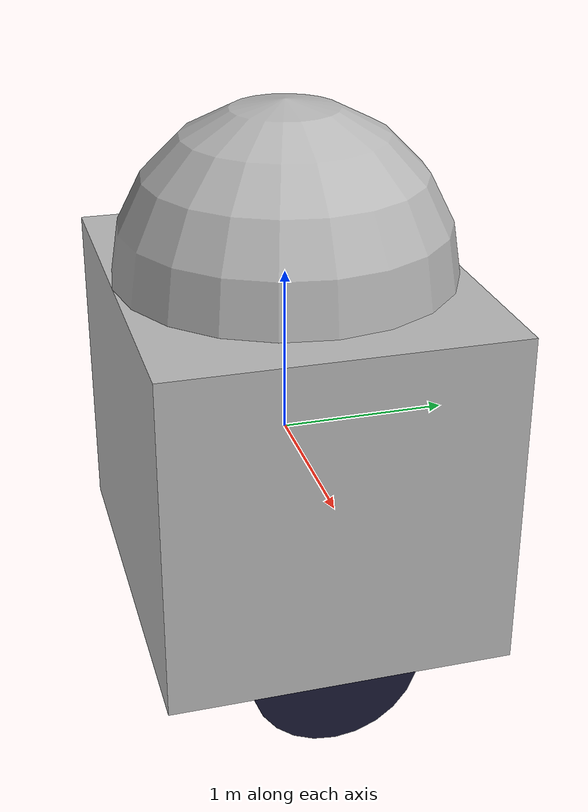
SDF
<?xml version="1.0"?>
<sdf version="1.7">
  <model name="Color Tutorial Model">
    <static>true</static>
    <link name="robot_link">
      <collision name="body_collision">
        <pose>0 0 0.5 0 -0 0</pose>
        <geometry>
          <box>
            <size>2 2 3</size>
          </box>
        </geometry>
      </collision>
      <visual name="wheel1_visual">
        <pose>-1 0 -1 0 1.57079 0</pose>
        <geometry>
          <cylinder>
            <radius>0.5</radius>
            <length>0.2</length>
          </cylinder>
        </geometry>
        <material> <!-- Wheel material -->
          <ambient>0.1 0.1 0.1 1</ambient>
          <diffuse>0.1 0.1 0.2 1</diffuse>
          <specular>0 0 0 0</specular>
          <emissive>0 0 0 1</emissive>
        </material> <!-- End wheel material -->
      </visual>
      <visual name="wheel2_visual">
        <pose>1 0 -1 0 1.57079 0</pose>
        <geometry>
          <cylinder>
            <radius>0.5</radius>
            <length>0.2</length>
          </cylinder>
        </geometry>
        <material> <!-- Wheel material -->
          <ambient>0.1 0.1 0.1 1</ambient>
          <diffuse>0.1 0.1 0.2 1</diffuse>
          <specular>0 0 0 0</specular>
          <emissive>0 0 0 1</emissive>
        </material> <!-- End wheel material -->
      </visual>
      <visual name="power_led_visual">
        <pose>0.225 0.225 0.25 0 0 0</pose>
        <geometry>
          <sphere>
            <radius>0.003</radius>
          </sphere>
        </geometry>
      </visual>
      <visual name="body_visual">
        <geometry>
          <box>
            <size>2.5 2 2</size>
          </box>
        </geometry>
      <material>
              <script>
                <uri>model://MyTarget/materials/scripts</uri>
                <uri>model://MyTarget/materials/textures</uri>
                <name>BodyTargetTexture</name>
              </script>
      </material>
      </visual>
      <visual name="head_visual">
        <pose>0 0 1 0 0 -2.5</pose>
        <geometry>
          <sphere>
            <radius>1</radius>
          </sphere>
        </geometry>
      <material>
              <script>
                <uri>model://MyTarget/materials/scripts</uri>
                <uri>model://MyTarget/materials/textures</uri>
                <name>BodyTargetTexture</name>
              </script>
      </material>
      </visual>
    </link>
  </model>
</sdf>
